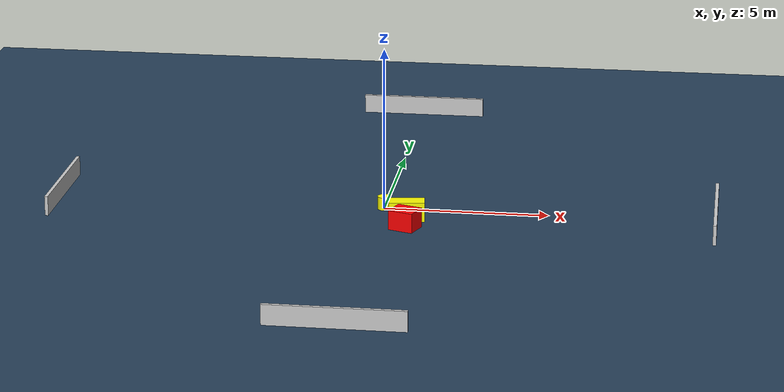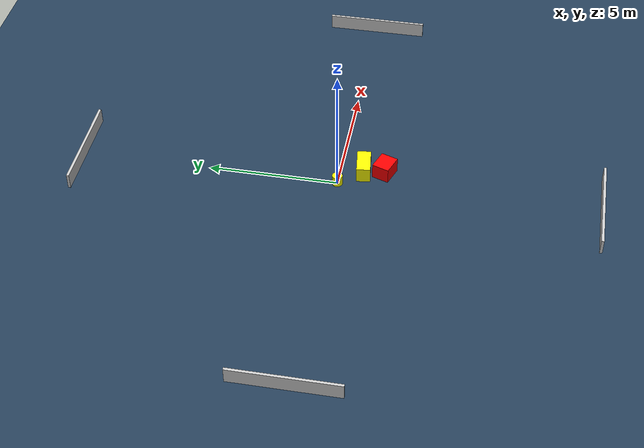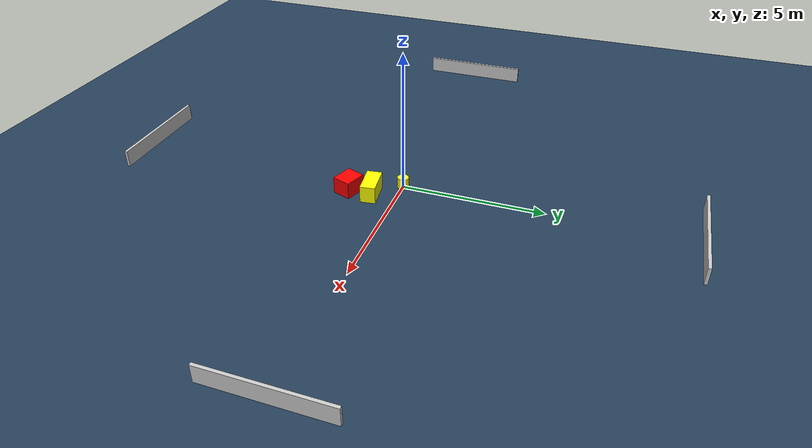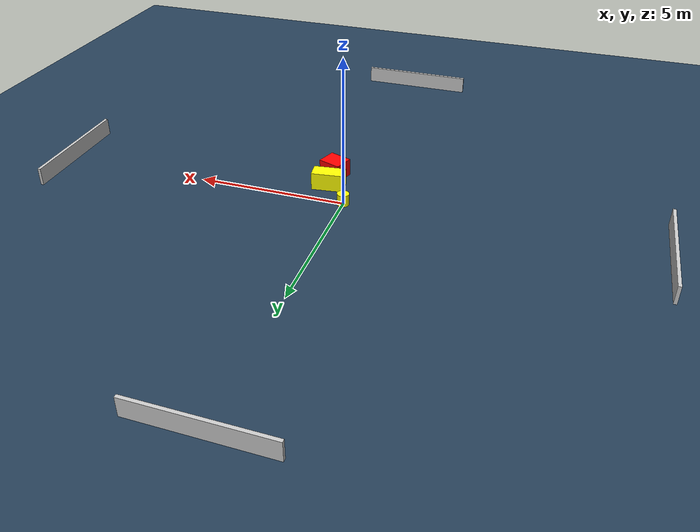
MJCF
<?xml version="1.0" ?>
<mujoco model="generated_environment">
  <option timestep="0.01" integrator="RK4" cone="elliptic"/>
  <default>
    <geom density="1"/>
  </default>
  <asset>
    <texture builtin="gradient" height="3072" name="skybox" rgb1="0.3 0.5 0.7" rgb2="0 0 0" type="skybox" width="512"/>
    <texture builtin="checker" height="300" name="groundplane" rgb1="0.2 0.3 0.4" rgb2="0.1 0.2 0.3" type="2d" width="300"/>
    <material name="groundplane" reflectance="0.2" texrepeat="5 5" texture="groundplane"/>
  </asset>
  <worldbody>
    <light dir="0 0 -1" directional="true" pos="0 0 1.5"/>
    <geom condim="3" friction="0.5 0.005 0.001" material="groundplane" name="floor" pos="0 0 0" size="0 0 0.05" type="plane"/>
    <body name="walls">
      <geom name="wall_1" condim="4" pos="-10.0 0.0 0.3" rgba="0.800000011920929 0.800000011920929 0.800000011920929 1.0" size="0.05 2.0 0.3" type="box"/>
      <geom name="wall_2" condim="4" pos="10.0 0.0 0.3" rgba="0.800000011920929 0.800000011920929 0.800000011920929 1.0" size="0.05 2.0 0.3" type="box"/>
      <geom name="wall_3" condim="4" pos="0.0 -10.0 0.3" rgba="0.800000011920929 0.800000011920929 0.800000011920929 1.0" size="2.0 0.05 0.3" type="box"/>
      <geom name="wall_4" condim="4" pos="0.0 10.0 0.3" rgba="0.800000011920929 0.800000011920929 0.800000011920929 1.0" size="2.0 0.05 0.3" type="box"/>
    </body>
    <body name="robot">
      <joint name="joint_x" type="slide" pos="0 0 0" axis="1 0 0"/>
      <joint name="joint_y" type="slide" pos="0 0 0" axis="0 1 0"/>
      <geom name="robot" type="cylinder" pos="0.0 0.0 0.2" size="0.2 0.2 0.0" mass="5.0" friction="1.0 0.005 0.0001" condim="4" rgba="1.0 1.0 0.0 1.0"/>
    </body>
    <body name="obstacle_1_movable">
      <geom name="obstacle_1_movable" condim="4" pos="0.7997733080871979 -0.8853686867496917 0.3" euler="0 0 187.06586198306132" friction="0.0 0.005 0.001" rgba="1.0 1.0 0.0 1.0" size="0.5346632408326069 0.2643676055163943 0.3" type="box" mass="0.1"/>
      <joint type="free"/>
    </body>
    <body name="obstacle_2_static">
      <geom name="obstacle_2_static" condim="4" pos="0.8522741818905171 -1.7001934145929651 0.3" euler="0 0 340.21210555341895" friction="0.0 0.005 0.001" rgba="1.0 0.0 0.0 1.0" size="0.3897032897833226 0.3353287452763772 0.3" type="box"/>
    </body>
  </worldbody>
  <actuator>
    <motor name="actuator_x" joint="joint_x" gear="1" ctrlrange="-1 1"/>
    <motor name="actuator_y" joint="joint_y" gear="1" ctrlrange="-1 1"/>
  </actuator>
</mujoco>
